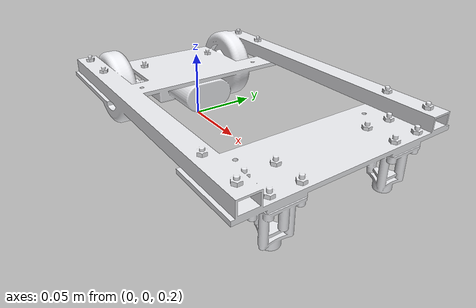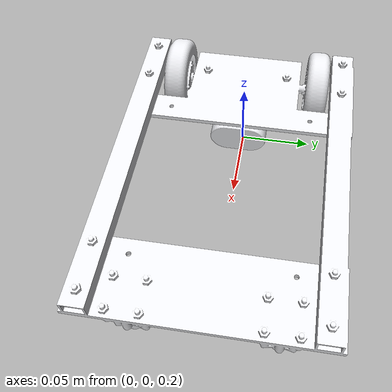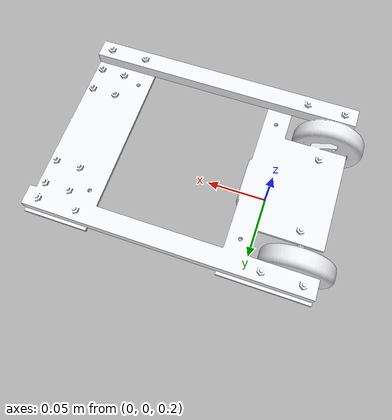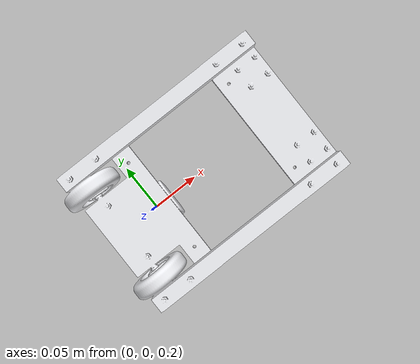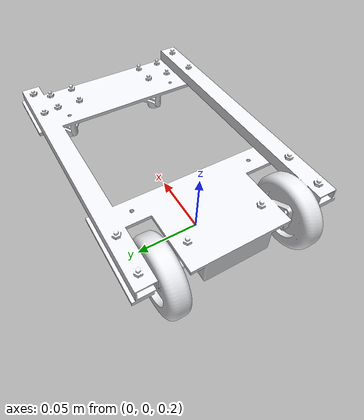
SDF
<?xml version="1.0" ?>
<sdf version="1.8"> <!--xmlとsdfのバージョン定義-->
    <world name="WorldDemo"> <!--ワールドの内容は全てこのタグの中に-->
        <physics name="1ms" type="ignored">
            <max_step_size>0.001</max_step_size> <!--最大何秒ごとにシミュレートするか（小さいほど正確なシミュレーションになる）-->
            <real_time_factor>1.0</real_time_factor> <!--現実時間との比率-->
        </physics>
        <plugin
            filename="libignition-gazebo-physics-system.so"
            name="ignition::gazebo::systems::Physics">
        </plugin> <!--動力学のシミュレーションに必要-->
        <plugin
            filename="libignition-gazebo-user-commands-system.so"
            name="ignition::gazebo::systems::UserCommands">
        </plugin> <!--ユーザーコマンドを利用可能に-->
        <plugin
            filename="libignition-gazebo-scene-broadcaster-system.so"
            name="ignition::gazebo::systems::SceneBroadcaster">
        </plugin> <!--ワールドシーンの描画-->

        <plugin
            filename="libignition-gazebo-physics-system.so"
            name="ignition::gazebo::systems::Physics">
        </plugin>
        <plugin
            filename="libignition-gazebo-user-commands-system.so"
            name="ignition::gazebo::systems::UserCommands">
        </plugin>
        <plugin
            filename="libignition-gazebo-scene-broadcaster-system.so"
            name="ignition::gazebo::systems::SceneBroadcaster">
        </plugin>

        <!--光に関する設定-->
        <light type="directional" name="sun"> <!--pointかdirectional、spot.-->
            <cast_shadows>true</cast_shadows> <!--trueなら影ができる-->
            <pose>0 0 10 0 0 0</pose> <!--位置 relative_to attributeを追加できる、しなければworldに関連付けられる-->
            <diffuse>0.8 0.8 0.8 1</diffuse>
            <specular>0.2 0.2 0.2 1</specular>
            <attenuation>
                <range>1000</range><!--光の範囲-->
                <constant>0.9</constant><!--減衰係数0-1、1は減衰しない-->
                <linear>0.01</linear><!--線形減衰係数0-1、1は距離について均等に減衰-->
                <quadratic>0.001</quadratic><!--光の方向性、pointには適用されない-->
            </attenuation>
            <direction>-0.5 0.1 -0.9</direction>
        </light>

        <model name="demoRobot">
          <!--モデルが地面にめり込まないように少し浮かせています-->
          <pose>0 0 0.2 0 0 0</pose>

            <link name="base_link">
              <inertial>
                <pose>0.1 0 0 0 0 0</pose>
                <inertia>
                  <ixx>4.2111447e-02</ixx>
                  <ixy>0</ixy>
                  <ixz>0</ixz>
                  <iyy>4.2111447e-02</iyy>
                  <iyz>0</iyz>
                  <izz>7.5254874e-02</izz>
                </inertia>
                <mass>1.3729096e+00</mass>
              </inertial>
              <collision name="base_collision">
                <!--重心の位置を調整しています-->
                <pose>-0.064 0.08 0.06 0 0 -1.57</pose>
                <geometry>
                  <mesh>
                    <uri>model://meshes/2DRoboPrac.stl</uri>
                  </mesh>
                </geometry>
              </collision>
              <visual name="base_visual">
                <!--重心の位置を調整しています-->
                <pose>-0.064 0.08 0.06 0 0 -1.57</pose>
                <geometry>
                  <mesh>
                    <uri>model://meshes/2DRoboPrac.dae</uri>
                  </mesh>
                </geometry>
                <material>
                  <diffuse> 0.921568627 0.925490196 0.941176471 1</diffuse>
                  <ambient> 0.921568627 0.925490196 0.941176471 1</ambient>
                  <specular>0.921568627 0.925490196 0.941176471 1</specular>
                </material>
              </visual>
            </link>
          </model>
    </world>
</sdf>
